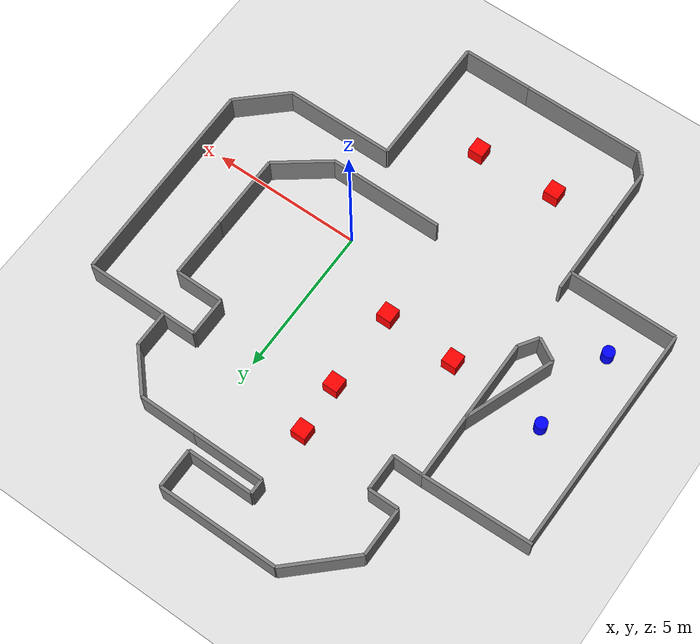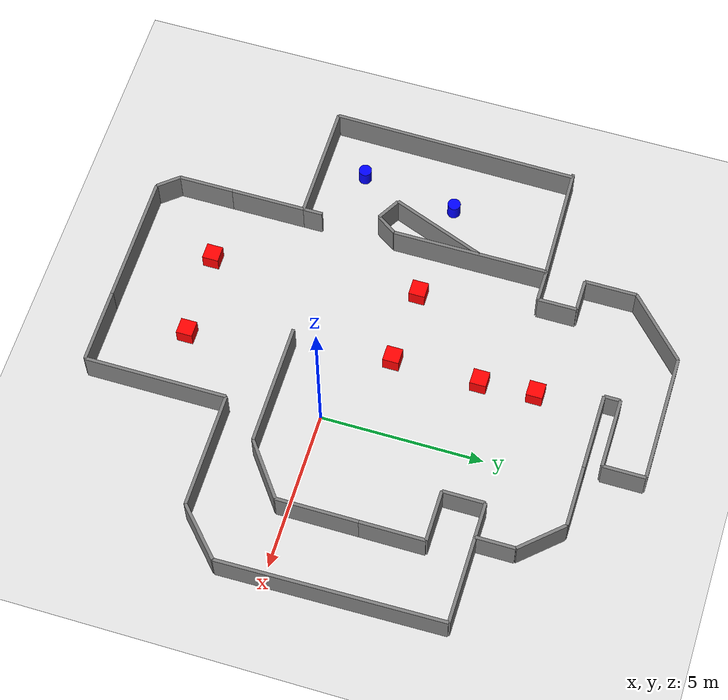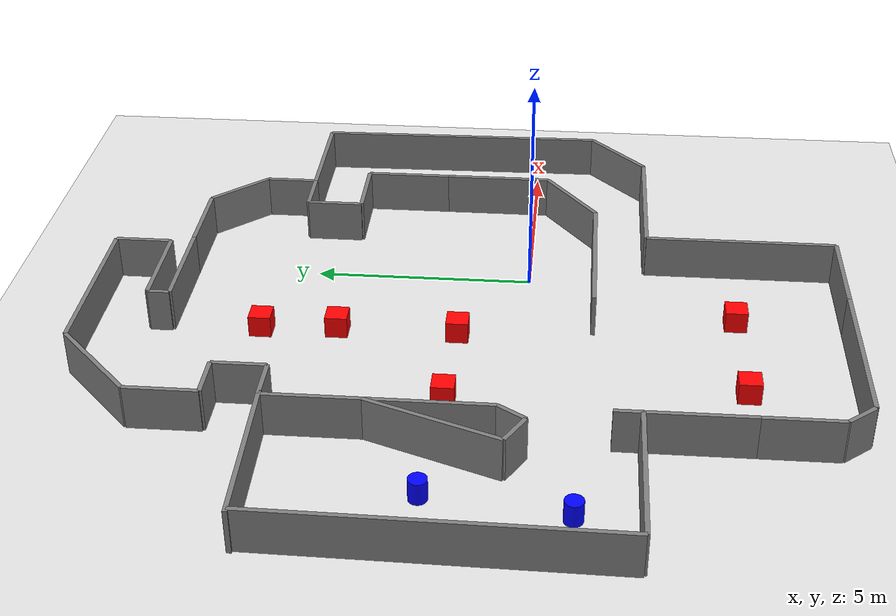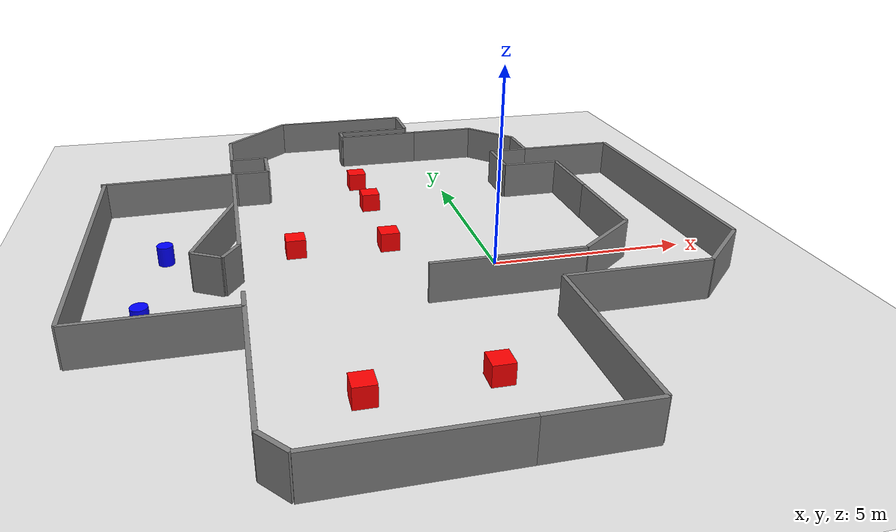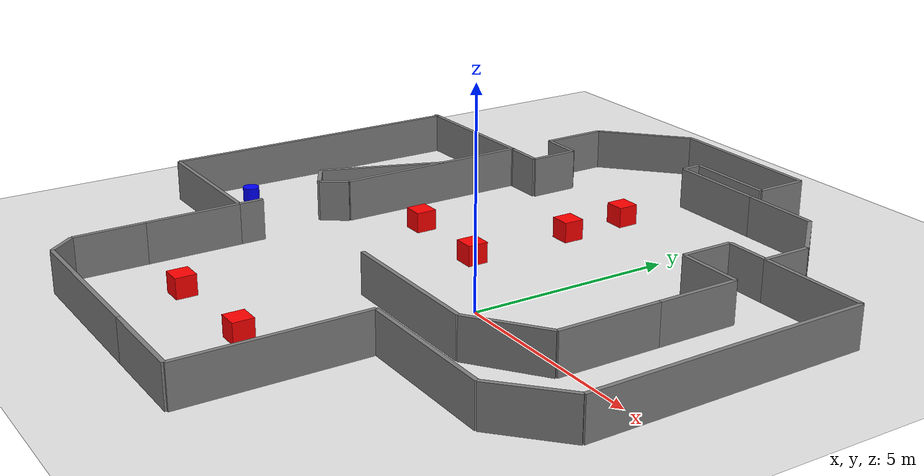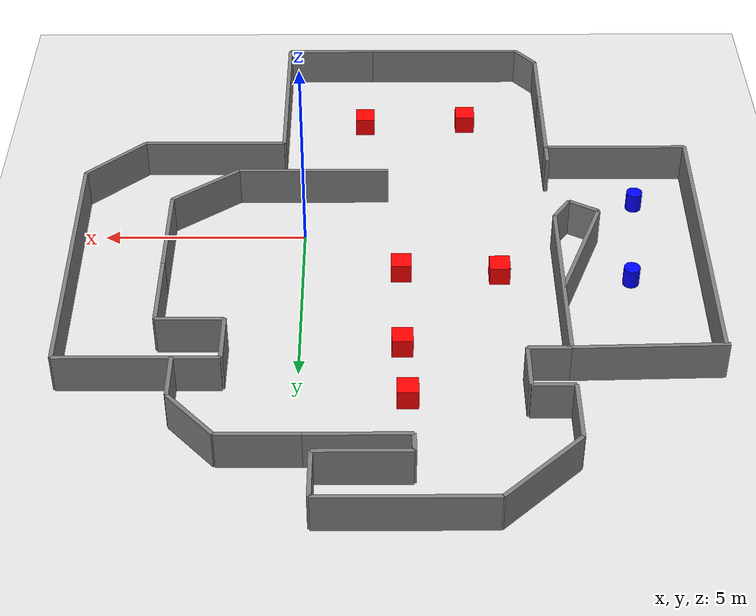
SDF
<sdf version="1.8">
 <world name="my_world2">
  <physics name="1ms" type="ode">
   <max_step_size>0.001</max_step_size>
   <real_time_factor>1</real_time_factor>
   <real_time_update_rate>1000</real_time_update_rate>
  </physics>
  <gravity>0 0 -9.8</gravity>
  <magnetic_field>6e-06 2.3e-05 -4.2e-05</magnetic_field>
  <atmosphere type="adiabatic"/>
  <scene><ambient>0.4 0.4 0.4 1</ambient><background>0.7 0.7 0.7 1</background><shadows>false</shadows></scene>
  <model name="ground_plane">
   <static>true</static>
   <link name="link">
    <collision name="collision">
     <geometry><plane><normal>0 0 1</normal><size>100 100</size></plane></geometry>
    </collision>
    <visual name="visual">
     <geometry><plane><normal>0 0 1</normal><size>100 100</size></plane></geometry>
     <material>
      <ambient>0.9 0.9 0.9 1</ambient>
      <diffuse>0.9 0.9 0.9 1</diffuse>
      <specular>0.9 0.9 0.9 1</specular>
     </material>
    </visual>
   </link>
  </model>
  <light name="sun" type="directional">
   <pose>0 0 10 0 0 0</pose>
   <intensity>1</intensity>
   <direction>-0.5 0.1 -0.9</direction>
   <diffuse>0.8 0.8 0.8 1</diffuse>
   <specular>0.2 0.2 0.2 1</specular>
   <attenuation>
    <range>1000</range>
    <linear>0.01</linear>
    <constant>0.9</constant>
    <quadratic>0.001</quadratic>
   </attenuation>
   <spot><inner_angle>0</inner_angle><outer_angle>0</outer_angle><falloff>0</falloff></spot>
  </light>
  <plugin filename="ignition-gazebo-physics-system" name="gz::sim::systems::Physics"/>
  <plugin filename="ignition-gazebo-sensors-system" name="gz::sim::systems::Sensors">
   <render_engine>ogre</render_engine>
  </plugin>
  <plugin filename="ignition-gazebo-scene-broadcaster-system" name="gz::sim::systems::SceneBroadcaster"/>
  <plugin filename="ignition-gazebo-magnetometer-system" name="ignition::gazebo::systems::Magnetometer"/>
  <plugin filename="ignition-gazebo-imu-system" name="ignition::gazebo::systems::Imu">
   <initial_orientation_as_reference>false</initial_orientation_as_reference>
   <update_rate>20.0</update_rate>
  </plugin>
  <model name="wall_3">
   <static>true</static>
   <type>wall</type>
   <pose>-0.200000 -1.500000 0.500000 0 0 0.000000</pose>
   <link name="link">
    <collision name="collision">
     <geometry><box><size>3.800000 0.100000 1.000000</size></box></geometry>
    </collision>
    <visual name="visual">
     <geometry><box><size>3.800000 0.100000 1.000000</size></box></geometry>
     <material><diffuse>0.5 0.5 0.5 1</diffuse></material>
    </visual>
   </link>
  </model>
  <model name="wall_4">
   <static>true</static>
   <type>wall</type>
   <pose>2.500000 -0.900000 0.500000 0 0 0.643501</pose>
   <link name="link">
    <collision name="collision">
     <geometry><box><size>2.000000 0.100000 1.000000</size></box></geometry>
    </collision>
    <visual name="visual">
     <geometry><box><size>2.000000 0.100000 1.000000</size></box></geometry>
     <material><diffuse>0.5 0.5 0.5 1</diffuse></material>
    </visual>
   </link>
  </model>
  <model name="wall_5">
   <static>true</static>
   <type>wall</type>
   <pose>3.300000 0.950000 0.500000 0 0 1.570796</pose>
   <link name="link">
    <collision name="collision">
     <geometry><box><size>2.500000 0.100000 1.000000</size></box></geometry>
    </collision>
    <visual name="visual">
     <geometry><box><size>2.500000 0.100000 1.000000</size></box></geometry>
     <material><diffuse>0.5 0.5 0.5 1</diffuse></material>
    </visual>
   </link>
  </model>
  <model name="wall_6">
   <static>true</static>
   <type>wall</type>
   <pose>3.300000 3.200000 0.500000 0 0 1.570796</pose>
   <link name="link">
    <collision name="collision">
     <geometry><box><size>2.000000 0.100000 1.000000</size></box></geometry>
    </collision>
    <visual name="visual">
     <geometry><box><size>2.000000 0.100000 1.000000</size></box></geometry>
     <material><diffuse>0.5 0.5 0.5 1</diffuse></material>
    </visual>
   </link>
  </model>
  <model name="wall_7">
   <static>true</static>
   <type>wall</type>
   <pose>2.500000 4.200000 0.500000 0 0 3.141593</pose>
   <link name="link">
    <collision name="collision">
     <geometry><box><size>1.600000 0.100000 1.000000</size></box></geometry>
    </collision>
    <visual name="visual">
     <geometry><box><size>1.600000 0.100000 1.000000</size></box></geometry>
     <material><diffuse>0.5 0.5 0.5 1</diffuse></material>
    </visual>
   </link>
  </model>
  <model name="wall_8">
   <static>true</static>
   <type>wall</type>
   <pose>1.700000 4.850000 0.500000 0 0 1.570796</pose>
   <link name="link">
    <collision name="collision">
     <geometry><box><size>1.300000 0.100000 1.000000</size></box></geometry>
    </collision>
    <visual name="visual">
     <geometry><box><size>1.300000 0.100000 1.000000</size></box></geometry>
     <material><diffuse>0.5 0.5 0.5 1</diffuse></material>
    </visual>
   </link>
  </model>
  <model name="wall_9">
   <static>true</static>
   <type>wall</type>
   <pose>2.250000 5.500000 0.500000 0 0 0.000000</pose>
   <link name="link">
    <collision name="collision">
     <geometry><box><size>1.100000 0.100000 1.000000</size></box></geometry>
    </collision>
    <visual name="visual">
     <geometry><box><size>1.100000 0.100000 1.000000</size></box></geometry>
     <material><diffuse>0.5 0.5 0.5 1</diffuse></material>
    </visual>
   </link>
  </model>
  <model name="wall_10">
   <static>true</static>
   <type>wall</type>
   <pose>2.800000 6.100000 0.500000 0 0 1.570796</pose>
   <link name="link">
    <collision name="collision">
     <geometry><box><size>1.200000 0.100000 1.000000</size></box></geometry>
    </collision>
    <visual name="visual">
     <geometry><box><size>1.200000 0.100000 1.000000</size></box></geometry>
     <material><diffuse>0.5 0.5 0.5 1</diffuse></material>
    </visual>
   </link>
  </model>
  <model name="wall_11">
   <static>true</static>
   <type>wall</type>
   <pose>2.250000 7.300000 0.500000 0 0 2.312744</pose>
   <link name="link">
    <collision name="collision">
     <geometry><box><size>1.627882 0.100000 1.000000</size></box></geometry>
    </collision>
    <visual name="visual">
     <geometry><box><size>1.627882 0.100000 1.000000</size></box></geometry>
     <material><diffuse>0.5 0.5 0.5 1</diffuse></material>
    </visual>
   </link>
  </model>
  <model name="wall_12">
   <static>true</static>
   <type>wall</type>
   <pose>0.750000 7.900000 0.500000 0 0 3.141593</pose>
   <link name="link">
    <collision name="collision">
     <geometry><box><size>1.900000 0.100000 1.000000</size></box></geometry>
    </collision>
    <visual name="visual">
     <geometry><box><size>1.900000 0.100000 1.000000</size></box></geometry>
     <material><diffuse>0.5 0.5 0.5 1</diffuse></material>
    </visual>
   </link>
  </model>
  <model name="wall_13">
   <static>true</static>
   <type>wall</type>
   <pose>-1.400000 7.900000 0.500000 0 0 3.141593</pose>
   <link name="link">
    <collision name="collision">
     <geometry><box><size>2.400000 0.100000 1.000000</size></box></geometry>
    </collision>
    <visual name="visual">
     <geometry><box><size>2.400000 0.100000 1.000000</size></box></geometry>
     <material><diffuse>0.5 0.5 0.5 1</diffuse></material>
    </visual>
   </link>
  </model>
  <model name="wall_14">
   <static>true</static>
   <type>wall</type>
   <pose>-2.600000 8.150000 0.500000 0 0 1.570796</pose>
   <link name="link">
    <collision name="collision">
     <geometry><box><size>0.500000 0.100000 1.000000</size></box></geometry>
    </collision>
    <visual name="visual">
     <geometry><box><size>0.500000 0.100000 1.000000</size></box></geometry>
     <material><diffuse>0.5 0.5 0.5 1</diffuse></material>
    </visual>
   </link>
  </model>
  <model name="wall_15">
   <static>true</static>
   <type>wall</type>
   <pose>-1.500000 8.400000 0.500000 0 0 0.000000</pose>
   <link name="link">
    <collision name="collision">
     <geometry><box><size>2.200000 0.100000 1.000000</size></box></geometry>
    </collision>
    <visual name="visual">
     <geometry><box><size>2.200000 0.100000 1.000000</size></box></geometry>
     <material><diffuse>0.5 0.5 0.5 1</diffuse></material>
    </visual>
   </link>
  </model>
  <model name="wall_16">
   <static>true</static>
   <type>wall</type>
   <pose>-0.400000 9.050000 0.500000 0 0 1.570796</pose>
   <link name="link">
    <collision name="collision">
     <geometry><box><size>1.300000 0.100000 1.000000</size></box></geometry>
    </collision>
    <visual name="visual">
     <geometry><box><size>1.300000 0.100000 1.000000</size></box></geometry>
     <material><diffuse>0.5 0.5 0.5 1</diffuse></material>
    </visual>
   </link>
  </model>
  <model name="wall_18">
   <static>true</static>
   <type>wall</type>
   <pose>-2.400000 9.700000 0.500000 0 0 3.141593</pose>
   <link name="link">
    <collision name="collision">
     <geometry><box><size>4.000000 0.100000 1.000000</size></box></geometry>
    </collision>
    <visual name="visual">
     <geometry><box><size>4.000000 0.100000 1.000000</size></box></geometry>
     <material><diffuse>0.5 0.5 0.5 1</diffuse></material>
    </visual>
   </link>
  </model>
  <model name="wall_19">
   <static>true</static>
   <type>wall</type>
   <pose>-5.300000 8.850000 0.500000 0 0 -2.384758</pose>
   <link name="link">
    <collision name="collision">
     <geometry><box><size>2.475884 0.100000 1.000000</size></box></geometry>
    </collision>
    <visual name="visual">
     <geometry><box><size>2.475884 0.100000 1.000000</size></box></geometry>
     <material><diffuse>0.5 0.5 0.5 1</diffuse></material>
    </visual>
   </link>
  </model>
  <model name="wall_20">
   <static>true</static>
   <type>wall</type>
   <pose>-6.200000 7.200000 0.500000 0 0 -1.570796</pose>
   <link name="link">
    <collision name="collision">
     <geometry><box><size>1.600000 0.100000 1.000000</size></box></geometry>
    </collision>
    <visual name="visual">
     <geometry><box><size>1.600000 0.100000 1.000000</size></box></geometry>
     <material><diffuse>0.5 0.5 0.5 1</diffuse></material>
    </visual>
   </link>
  </model>
  <model name="wall_21">
   <static>true</static>
   <type>wall</type>
   <pose>-5.700000 6.400000 0.500000 0 0 0.000000</pose>
   <link name="link">
    <collision name="collision">
     <geometry><box><size>1.000000 0.100000 1.000000</size></box></geometry>
    </collision>
    <visual name="visual">
     <geometry><box><size>1.000000 0.100000 1.000000</size></box></geometry>
     <material><diffuse>0.5 0.5 0.5 1</diffuse></material>
    </visual>
   </link>
  </model>
  <model name="wall_22">
   <static>true</static>
   <type>wall</type>
   <pose>-5.200000 5.800000 0.500000 0 0 -1.570796</pose>
   <link name="link">
    <collision name="collision">
     <geometry><box><size>1.200000 0.100000 1.000000</size></box></geometry>
    </collision>
    <visual name="visual">
     <geometry><box><size>1.200000 0.100000 1.000000</size></box></geometry>
     <material><diffuse>0.5 0.5 0.5 1</diffuse></material>
    </visual>
   </link>
  </model>
  <model name="wall_23">
   <static>true</static>
   <type>wall</type>
   <pose>-5.700000 5.200000 0.500000 0 0 3.141593</pose>
   <link name="link">
    <collision name="collision">
     <geometry><box><size>1.000000 0.100000 1.000000</size></box></geometry>
    </collision>
    <visual name="visual">
     <geometry><box><size>1.000000 0.100000 1.000000</size></box></geometry>
     <material><diffuse>0.5 0.5 0.5 1</diffuse></material>
    </visual>
   </link>
  </model>
  <model name="wall_25">
   <static>true</static>
   <type>wall</type>
   <pose>-6.200000 2.800000 0.500000 0 0 -1.570796</pose>
   <link name="link">
    <collision name="collision">
     <geometry><box><size>4.800000 0.100000 1.000000</size></box></geometry>
    </collision>
    <visual name="visual">
     <geometry><box><size>4.800000 0.100000 1.000000</size></box></geometry>
     <material><diffuse>0.5 0.5 0.5 1</diffuse></material>
    </visual>
   </link>
  </model>
  <model name="wall_26">
   <static>true</static>
   <type>wall</type>
   <pose>-6.400000 0.100000 0.500000 0 0 -2.158799</pose>
   <link name="link">
    <collision name="collision">
     <geometry><box><size>0.721110 0.100000 1.000000</size></box></geometry>
    </collision>
    <visual name="visual">
     <geometry><box><size>0.721110 0.100000 1.000000</size></box></geometry>
     <material><diffuse>0.5 0.5 0.5 1</diffuse></material>
    </visual>
   </link>
  </model>
  <model name="wall_27">
   <static>true</static>
   <type>wall</type>
   <pose>-6.950000 0.000000 0.500000 0 0 2.622447</pose>
   <link name="link">
    <collision name="collision">
     <geometry><box><size>0.806226 0.100000 1.000000</size></box></geometry>
    </collision>
    <visual name="visual">
     <geometry><box><size>0.806226 0.100000 1.000000</size></box></geometry>
     <material><diffuse>0.5 0.5 0.5 1</diffuse></material>
    </visual>
   </link>
  </model>
  <model name="wall_28">
   <static>true</static>
   <type>wall</type>
   <pose>-6.750000 1.650000 0.500000 0 0 1.208252</pose>
   <link name="link">
    <collision name="collision">
     <geometry><box><size>3.101612 0.100000 1.000000</size></box></geometry>
    </collision>
    <visual name="visual">
     <geometry><box><size>3.101612 0.100000 1.000000</size></box></geometry>
     <material><diffuse>0.5 0.5 0.5 1</diffuse></material>
    </visual>
   </link>
  </model>
  <model name="wall_29">
   <static>true</static>
   <type>wall</type>
   <pose>-7.950000 5.150000 0.500000 0 0 -3.114572</pose>
   <link name="link">
    <collision name="collision">
     <geometry><box><size>3.701351 0.100000 1.000000</size></box></geometry>
    </collision>
    <visual name="visual">
     <geometry><box><size>3.701351 0.100000 1.000000</size></box></geometry>
     <material><diffuse>0.5 0.5 0.5 1</diffuse></material>
    </visual>
   </link>
  </model>
  <model name="wall_30">
   <static>true</static>
   <type>wall</type>
   <pose>-9.750000 1.300000 0.500000 0 0 -1.583953</pose>
   <link name="link">
    <collision name="collision">
     <geometry><box><size>7.600658 0.100000 1.000000</size></box></geometry>
    </collision>
    <visual name="visual">
     <geometry><box><size>7.600658 0.100000 1.000000</size></box></geometry>
     <material><diffuse>0.5 0.5 0.5 1</diffuse></material>
    </visual>
   </link>
  </model>
  <model name="wall_33">
   <static>true</static>
   <type>wall</type>
   <pose>-8.000000 -2.500000 0.500000 0 0 0.000000</pose>
   <link name="link">
    <collision name="collision">
     <geometry><box><size>3.600000 0.100000 1.000000</size></box></geometry>
    </collision>
    <visual name="visual">
     <geometry><box><size>3.600000 0.100000 1.000000</size></box></geometry>
     <material><diffuse>0.5 0.5 0.5 1</diffuse></material>
    </visual>
   </link>
  </model>
  <model name="wall_34">
   <static>true</static>
   <type>wall</type>
   <pose>-6.200000 -2.200000 0.500000 0 0 1.570796</pose>
   <link name="link">
    <collision name="collision">
     <geometry><box><size>0.600000 0.100000 1.000000</size></box></geometry>
    </collision>
    <visual name="visual">
     <geometry><box><size>0.600000 0.100000 1.000000</size></box></geometry>
     <material><diffuse>0.5 0.5 0.5 1</diffuse></material>
    </visual>
   </link>
  </model>
  <model name="wall_35">
   <static>true</static>
   <type>wall</type>
   <pose>-6.200000 -3.650000 0.500000 0 0 -1.570796</pose>
   <link name="link">
    <collision name="collision">
     <geometry><box><size>2.300000 0.100000 1.000000</size></box></geometry>
    </collision>
    <visual name="visual">
     <geometry><box><size>2.300000 0.100000 1.000000</size></box></geometry>
     <material><diffuse>0.5 0.5 0.5 1</diffuse></material>
    </visual>
   </link>
  </model>
  <model name="wall_36">
   <static>true</static>
   <type>wall</type>
   <pose>-6.200000 -5.650000 0.500000 0 0 -1.570796</pose>
   <link name="link">
    <collision name="collision">
     <geometry><box><size>1.700000 0.100000 1.000000</size></box></geometry>
    </collision>
    <visual name="visual">
     <geometry><box><size>1.700000 0.100000 1.000000</size></box></geometry>
     <material><diffuse>0.5 0.5 0.5 1</diffuse></material>
    </visual>
   </link>
  </model>
  <model name="wall_37">
   <static>true</static>
   <type>wall</type>
   <pose>-5.950000 -6.800000 0.500000 0 0 -0.876058</pose>
   <link name="link">
    <collision name="collision">
     <geometry><box><size>0.781025 0.100000 1.000000</size></box></geometry>
    </collision>
    <visual name="visual">
     <geometry><box><size>0.781025 0.100000 1.000000</size></box></geometry>
     <material><diffuse>0.5 0.5 0.5 1</diffuse></material>
    </visual>
   </link>
  </model>
  <model name="wall_38">
   <static>true</static>
   <type>wall</type>
   <pose>-3.700000 -7.100000 0.500000 0 0 0.000000</pose>
   <link name="link">
    <collision name="collision">
     <geometry><box><size>4.000000 0.100000 1.000000</size></box></geometry>
    </collision>
    <visual name="visual">
     <geometry><box><size>4.000000 0.100000 1.000000</size></box></geometry>
     <material><diffuse>0.5 0.5 0.5 1</diffuse></material>
    </visual>
   </link>
  </model>
  <model name="wall_39">
   <static>true</static>
   <type>wall</type>
   <pose>-0.550000 -7.100000 0.500000 0 0 0.000000</pose>
   <link name="link">
    <collision name="collision">
     <geometry><box><size>2.300000 0.100000 1.000000</size></box></geometry>
    </collision>
    <visual name="visual">
     <geometry><box><size>2.300000 0.100000 1.000000</size></box></geometry>
     <material><diffuse>0.5 0.5 0.5 1</diffuse></material>
    </visual>
   </link>
  </model>
  <model name="wall_41">
   <static>true</static>
   <type>wall</type>
   <pose>0.600000 -4.900000 0.500000 0 0 1.570796</pose>
   <link name="link">
    <collision name="collision">
     <geometry><box><size>4.400000 0.100000 1.000000</size></box></geometry>
    </collision>
    <visual name="visual">
     <geometry><box><size>4.400000 0.100000 1.000000</size></box></geometry>
     <material><diffuse>0.5 0.5 0.5 1</diffuse></material>
    </visual>
   </link>
  </model>
  <model name="wall_42">
   <static>true</static>
   <type>wall</type>
   <pose>2.400000 -2.700000 0.500000 0 0 0.000000</pose>
   <link name="link">
    <collision name="collision">
     <geometry><box><size>3.600000 0.100000 1.000000</size></box></geometry>
    </collision>
    <visual name="visual">
     <geometry><box><size>3.600000 0.100000 1.000000</size></box></geometry>
     <material><diffuse>0.5 0.5 0.5 1</diffuse></material>
    </visual>
   </link>
  </model>
  <model name="wall_43">
   <static>true</static>
   <type>wall</type>
   <pose>4.900000 -2.050000 0.500000 0 0 0.748378</pose>
   <link name="link">
    <collision name="collision">
     <geometry><box><size>1.910497 0.100000 1.000000</size></box></geometry>
    </collision>
    <visual name="visual">
     <geometry><box><size>1.910497 0.100000 1.000000</size></box></geometry>
     <material><diffuse>0.5 0.5 0.5 1</diffuse></material>
    </visual>
   </link>
  </model>
  <model name="wall_44">
   <static>true</static>
   <type>wall</type>
   <pose>5.550000 2.050000 0.500000 0 0 1.585288</pose>
   <link name="link">
    <collision name="collision">
     <geometry><box><size>6.900725 0.100000 1.000000</size></box></geometry>
    </collision>
    <visual name="visual">
     <geometry><box><size>6.900725 0.100000 1.000000</size></box></geometry>
     <material><diffuse>0.5 0.5 0.5 1</diffuse></material>
    </visual>
   </link>
  </model>
  <model name="wall_45">
   <static>true</static>
   <type>wall</type>
   <pose>4.150000 5.500000 0.500000 0 0 0.000000</pose>
   <link name="link">
    <collision name="collision">
     <geometry><box><size>2.700000 0.100000 1.000000</size></box></geometry>
    </collision>
    <visual name="visual">
     <geometry><box><size>2.700000 0.100000 1.000000</size></box></geometry>
     <material><diffuse>0.5 0.5 0.5 1</diffuse></material>
    </visual>
   </link>
  </model>
  <model name="box_40">
   <static>true</static>
   <type>box</type>
   <pose>-2.500000 5.900000 0.250000 0 0 0</pose>
   <link name="link">
    <collision name="collision">
     <geometry><box><size>0.500000 0.500000 0.500000</size></box></geometry>
    </collision>
    <visual name="visual">
     <geometry><box><size>0.500000 0.500000 0.500000</size></box></geometry>
     <material><diffuse>1 0 0 1</diffuse></material>
    </visual>
   </link>
  </model>
  <model name="cylinder_47">
   <static>true</static>
   <type>cylinder</type>
   <pose>-8.000000 1.800000 0.250000 0 0 0</pose>
   <link name="link">
    <collision name="collision">
     <geometry><cylinder><radius>0.200000</radius><length>0.500000</length></cylinder></geometry>
    </collision>
    <visual name="visual">
     <geometry><cylinder><radius>0.200000</radius><length>0.500000</length></cylinder></geometry>
     <material><diffuse>0 0 1 1</diffuse></material>
    </visual>
   </link>
  </model>
  <model name="cylinder_48">
   <static>true</static>
   <type>cylinder</type>
   <pose>-8.400000 -1.200000 0.250000 0 0 0</pose>
   <link name="link">
    <collision name="collision">
     <geometry><cylinder><radius>0.200000</radius><length>0.500000</length></cylinder></geometry>
    </collision>
    <visual name="visual">
     <geometry><cylinder><radius>0.200000</radius><length>0.500000</length></cylinder></geometry>
     <material><diffuse>0 0 1 1</diffuse></material>
    </visual>
   </link>
  </model>
  <model name="box_50">
   <static>true</static>
   <type>box</type>
   <pose>-4.800000 1.600000 0.250000 0 0 0</pose>
   <link name="link">
    <collision name="collision">
     <geometry><box><size>0.500000 0.500000 0.500000</size></box></geometry>
    </collision>
    <visual name="visual">
     <geometry><box><size>0.500000 0.500000 0.500000</size></box></geometry>
     <material><diffuse>1 0 0 1</diffuse></material>
    </visual>
   </link>
  </model>
  <model name="box_51">
   <static>true</static>
   <type>box</type>
   <pose>-2.400000 1.500000 0.250000 0 0 0</pose>
   <link name="link">
    <collision name="collision">
     <geometry><box><size>0.500000 0.500000 0.500000</size></box></geometry>
    </collision>
    <visual name="visual">
     <geometry><box><size>0.500000 0.500000 0.500000</size></box></geometry>
     <material><diffuse>1 0 0 1</diffuse></material>
    </visual>
   </link>
  </model>
  <model name="box_52">
   <static>true</static>
   <type>box</type>
   <pose>-2.400000 4.200000 0.250000 0 0 0</pose>
   <link name="link">
    <collision name="collision">
     <geometry><box><size>0.500000 0.500000 0.500000</size></box></geometry>
    </collision>
    <visual name="visual">
     <geometry><box><size>0.500000 0.500000 0.500000</size></box></geometry>
     <material><diffuse>1 0 0 1</diffuse></material>
    </visual>
   </link>
  </model>
  <model name="box_53">
   <static>true</static>
   <type>box</type>
   <pose>-4.200000 -4.800000 0.250000 0 0 0</pose>
   <link name="link">
    <collision name="collision">
     <geometry><box><size>0.500000 0.500000 0.500000</size></box></geometry>
    </collision>
    <visual name="visual">
     <geometry><box><size>0.500000 0.500000 0.500000</size></box></geometry>
     <material><diffuse>1 0 0 1</diffuse></material>
    </visual>
   </link>
  </model>
  <model name="box_54">
   <static>true</static>
   <type>box</type>
   <pose>-1.500000 -4.700000 0.250000 0 0 0</pose>
   <link name="link">
    <collision name="collision">
     <geometry><box><size>0.500000 0.500000 0.500000</size></box></geometry>
    </collision>
    <visual name="visual">
     <geometry><box><size>0.500000 0.500000 0.500000</size></box></geometry>
     <material><diffuse>1 0 0 1</diffuse></material>
    </visual>
   </link>
  </model>
 </world>
</sdf>
